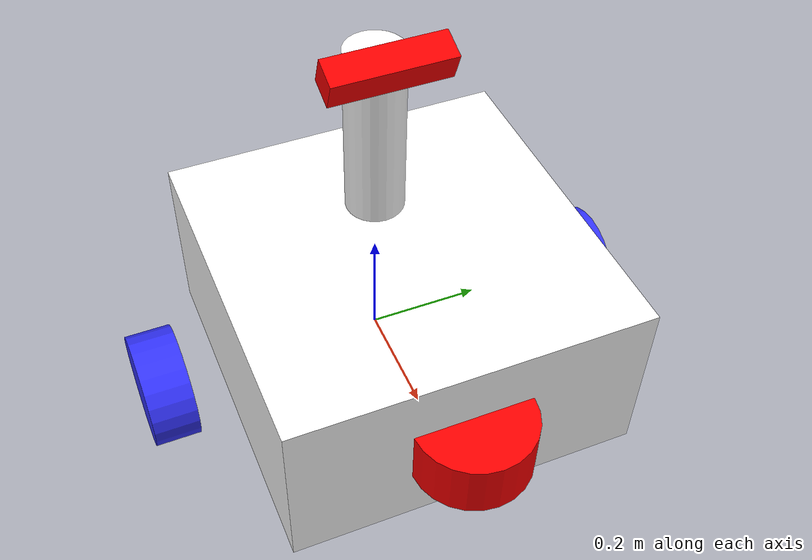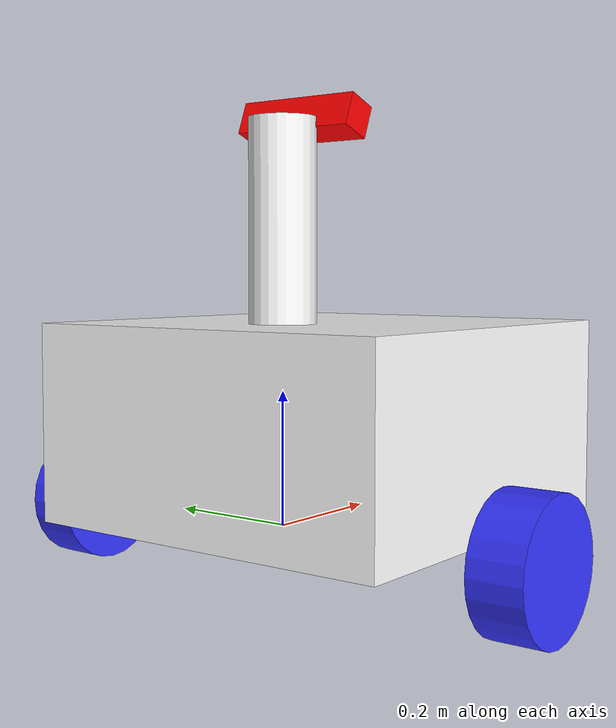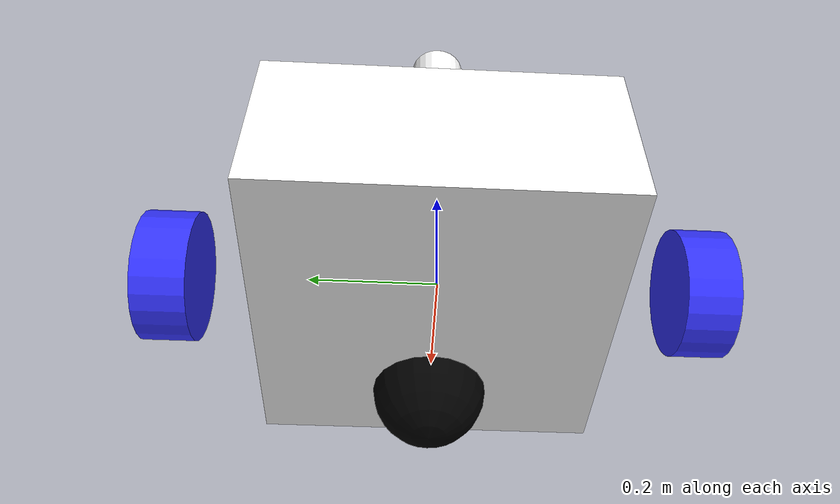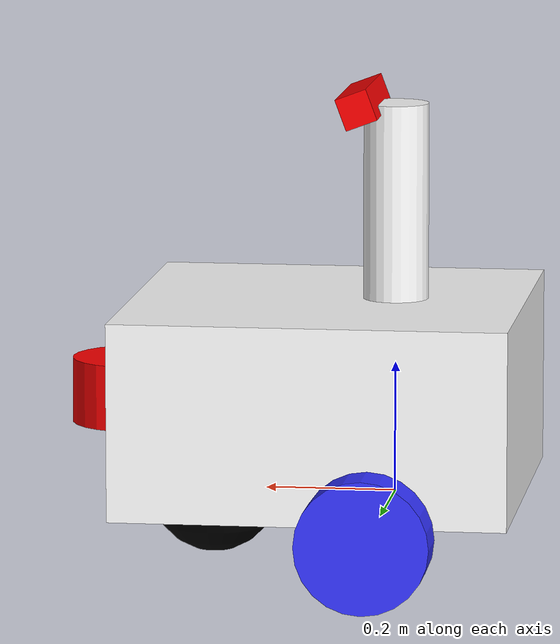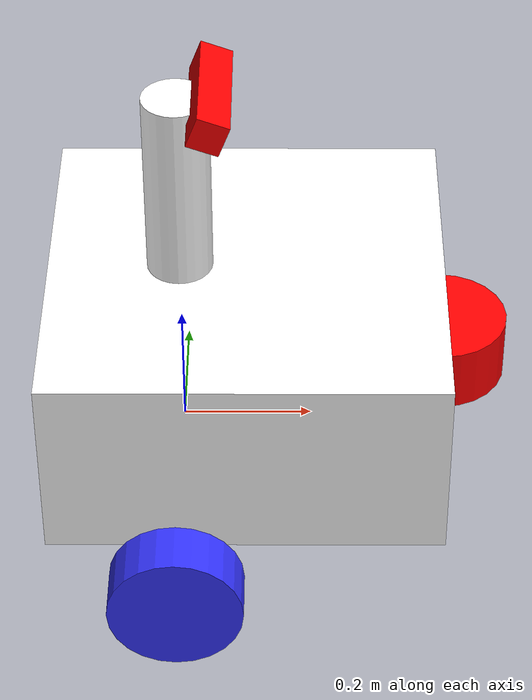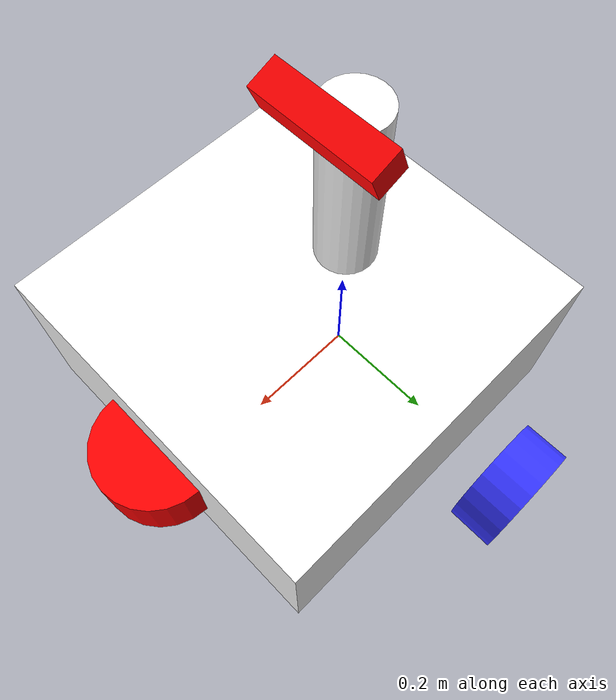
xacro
<?xml version="1.0"?>
<robot xmlns:xacro="http://www.ros.org/wiki/xacro"  name="robot">

    <xacro:arg name="use_ros2_control" default="true" />

    <xacro:include filename="robot_core.xacro" />

    <xacro:if value="$(arg use_ros2_control)">
        <xacro:include filename="ros2_control.xacro" />
    </xacro:if>
    <xacro:unless value="$(arg use_ros2_control)">
        <xacro:include filename="gazebo_control.xacro" />
    </xacro:unless>

    <!-- Sensors -->
    <xacro:include filename="lidar.xacro" />
    <xacro:include filename="imu.xacro" />
    <xacro:include filename="gps.xacro" />
    <xacro:include filename="depth_camera.xacro" />
</robot>

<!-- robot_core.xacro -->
<robot xmlns:xacro="http://www.ros.org/wiki/xacro">

    <xacro:include filename="inertial_macros.xacro"/>

    <material name="white">
        <color rgba="1 1 1 1"/>
    </material>

    <material name="orange">
        <color rgba="1 0.3 0.1 1"/>
    </material>

    <material name="blue">
        <color rgba="0.2 0.2 1 1"/>
    </material>

    <material name="black">
        <color rgba="0 0 0 1"/>
    </material>

    <material name="red">
        <color rgba="1 0 0 1"/>
    </material>

    <!-- BASE LINK -->
    <link name="base_link">

    </link>

    <joint name="base_footprint_joint" type="fixed">
        <parent link="base_link"/>
        <child link="base_footprint"/>
        <origin xyz="0 0 0" rpy="0 0 0"/>
    </joint>

    <link name="base_footprint">
    </link>

    <!-- CHASSIS LINK -->

    <joint name="chassis_joint" type="fixed">
        <parent link="base_link" />
        <child link="chassis" />
        <origin xyz="-0.2 0 0" />
    </joint>

    <link name="chassis">
        <visual>
            <origin xyz="0.3 0 0.15"/>
            <geometry>
                <box size="0.6 0.6 0.3"/>
            </geometry>
            <material name="white"/>
        </visual>
        <collision>
            <origin xyz="0.3 0 0.15"/>
            <geometry>
                <box size="0.6 0.6 0.3"/>
            </geometry>
        </collision>
        <xacro:inertial_box mass="10" x="0.6" y="0.6" z="0.3">
            <origin xyz="0.3 0 0.15" rpy="0 0 0"/>
        </xacro:inertial_box>
    </link>

    <gazebo reference="chassis">
        <material>Gazebo/White</material>
    </gazebo>

    <!-- LEFT WHEEL LINK -->

    <joint name="left_wheel_joint" type="continuous">
        <parent link="base_link"/>
        <child link="left_wheel"/>
        <origin xyz="0 0.405 0" rpy="-${pi/2} 0 0"/>
        <axis xyz="0 0 1"/>
    </joint>

    <link name="left_wheel">
        <visual>
            <geometry>
                <cylinder radius="0.1" length="0.08"/>
            </geometry>
            <material name="blue"/>
        </visual>
        <collision>
            <geometry>
                <sphere radius="0.1" />
            </geometry>
        </collision>
        <xacro:inertial_cylinder mass="0.4" length="0.08" radius="0.1">
            <origin xyz="0 0 0" rpy="0 0 0"/>
        </xacro:inertial_cylinder>
    </link>

    <gazebo reference="left_wheel">
        <material>Gazebo/Blue</material>
    </gazebo>

    <!-- RIGHT WHEEL LINK -->

    <joint name="right_wheel_joint" type="continuous">
        <parent link="base_link"/>
        <child link="right_wheel"/>
        <origin xyz="0 -0.405 0" rpy="${pi/2} 0 0"/>
        <axis xyz="0 0 -1"/>
    </joint>

    <link name="right_wheel">
        <visual>
            <geometry>
                <cylinder radius="0.1" length="0.08"/>
            </geometry>
            <material name="blue"/>
        </visual>
        <collision>
            <geometry>
                <sphere radius="0.1" />
            </geometry>
        </collision>
        <xacro:inertial_cylinder mass="0.4" length="0.08" radius="0.1">
            <origin xyz="0 0 0" rpy="0 0 0"/>
        </xacro:inertial_cylinder>
    </link>

    <gazebo reference="right_wheel">
        <material>Gazebo/Blue</material>
    </gazebo>

    <!-- CASTER WHEEL LINK-->
    <joint name="caster_wheel_joint" type="fixed">
        <parent link="chassis"/>
        <child link="caster_wheel"/>
        <origin xyz="0.48 0 0"/>
    </joint>

    <link name="caster_wheel">
        <visual>
            <geometry>
                <sphere radius="0.1"/>
            </geometry>
            <material name="black"/>
        </visual>
        <collision>
            <geometry>
                <sphere radius="0.1"/>
            </geometry>
        </collision>
        <xacro:inertial_sphere mass="0.2" radius="0.1">
            <origin xyz="0 0 0" rpy="0 0 0"/>
        </xacro:inertial_sphere>
    </link>

    <gazebo reference="caster_wheel">
        <material>Gazebo/Black</material>
        <mu1 value="0.001"/>
        <mu2 value="0.001"/>
    </gazebo>

    <!--CAMERA MOUNT-->
    <joint name="camera_mount_joint" type="fixed">
        <parent link="base_link"/>
        <child link="camera_mount"/>
        <origin xyz="0 0 0.45"/>
    </joint>

    <link name="camera_mount">
        <visual>
            <geometry>
                <cylinder radius="0.05" length="0.3"/>
            </geometry>
            <material name="white"/>
        </visual>
        <collision>
            <geometry>
                <cylinder radius="0.05" length="0.3"/>
            </geometry>
        </collision>
        <xacro:inertial_cylinder mass="0.4" length="0.3" radius="0.05">
            <origin xyz="0 0 0" rpy="0 0 0"/>
        </xacro:inertial_cylinder>
    </link>

</robot>

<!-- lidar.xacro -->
<robot xmlns:xacro="http://www.ros.org/wiki/xacro">

    <joint name="laser_joint" type="fixed">
        <parent link="chassis"/>
        <child link="laser_frame"/>
        <origin xyz="0.6 0 0.15" rpy="0 0 0"/>
    </joint>

    <link name="laser_frame">
        <visual>
            <geometry>
                <cylinder radius="0.1" length="0.1"/>
            </geometry>
            <material name="red"/>
        </visual>
        <collision>
            <geometry>
                <cylinder radius="0.1" length="0.1"/>
            </geometry>
        </collision>
        <xacro:inertial_cylinder mass="0.5" length="0.1" radius="0.1">
            <origin xyz="0 0 0" rpy="0 0 0"/>
        </xacro:inertial_cylinder>
    </link>

    <gazebo reference="laser_frame">
        <material>Gazebo/Red</material>
        <sensor name="laser" type="ray">
            <pose>0 0 0 0 0 0</pose>
            <visualize>true</visualize>
            <update_rate>10</update_rate>
            <ray>
                <scan>
                    <horizontal>
                        <samples>361</samples>
                        <resolution>1</resolution>
                        <min_angle>-${pi/2}</min_angle>
                        <max_angle>${pi/2}</max_angle>
                    </horizontal>
                </scan>
                <range>
                    <min>0.3</min>
                    <max>12</max>
                    <resolution>0.01</resolution>
                </range>
            </ray>
            <plugin name="laser_controller" filename="libgazebo_ros_ray_sensor.so">
                <ros>
                    <argument>~/out:=lidar_scan</argument>
                </ros>
                <output_type>sensor_msgs/LaserScan</output_type>
                <frame_name>laser_frame</frame_name>
            </plugin>
        </sensor>
    </gazebo>

</robot>

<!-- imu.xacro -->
<robot xmlns:xacro="http://www.ros.org/wiki/xacro">

    <joint name="imu_joint" type="fixed">
        <parent link="base_link"/>
        <child link="imu_link"/>
        <origin xyz="0 0 0" rpy="0 0 0"/>
    </joint>

    <link name="imu_link"></link>

    <gazebo reference="imu_link">
        <gravity>true</gravity>
        <sensor name="imu_sensor" type="imu">
        <always_on>true</always_on>
        <update_rate>100</update_rate>
        <visualize>true</visualize>
        <topic>__default_topic__</topic>
        <plugin filename="libgazebo_ros_imu_sensor.so" name="imu_plugin">
            <ros>
                <namespace>/imu</namespace>
                <remapping>~/out:=data</remapping>
            </ros>
            <update_rate>30.0</update_rate>
            <gaussian_noise>0.0</gaussian_noise>
            <body_name>imu_link</body_name>
            <frame_name>imu_link</frame_name>
            <initial_orientation_as_reference>true</initial_orientation_as_reference>
        </plugin>
        <pose>0 0 0 0 0 0</pose>
        </sensor>
    </gazebo>

</robot>

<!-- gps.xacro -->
<robot xmlns:xacro="http://www.ros.org/wiki/xacro">

    <joint name="gps_joint" type="fixed">
        <parent link="chassis"/>
        <child link="gps_link"/>
        <origin xyz="0 0 0" rpy="0 0 0"/>
    </joint>

    <link name="gps_link"></link>

    <gazebo reference="imu_link">
        <sensor name="gps_sensor" type="gps">
        <always_on>true</always_on>
        <update_rate>10.0</update_rate>
        <gps>
            <position_sensing>
            <horizontal>
                <noise type="gaussian">
                <mean>0.0</mean>
                <stddev>1e-2</stddev>
                </noise>
            </horizontal>
            <vertical>
                <noise type="gaussian">
                <mean>0.0</mean>
                <stddev>1e-2</stddev>
                </noise>
            </vertical>
            </position_sensing>
        </gps>
        <plugin filename="libgazebo_ros_gps_sensor.so" name="gps_plugin">
            <ros>
                <namespace>/gps</namespace>
                <remapping>~/out:=fix</remapping>
            </ros>
        </plugin>
        </sensor>
    </gazebo>

</robot>

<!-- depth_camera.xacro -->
<robot xmlns:xacro="http://www.ros.org/wiki/xacro">

    <joint name="camera_joint" type="fixed">
        <parent link="chassis"/>
        <child link="camera_link"/>
        <origin xyz="0.25 0 0.6" rpy="0 0.36 0"/>
    </joint>

    <link name="camera_link">
        <visual>
            <geometry>
                <box size="0.05 0.2 0.05"/>
            </geometry>
            <material name="red"/>
        </visual>
    </link>

    <joint name="camera_optical_joint" type="fixed">
        <parent link="camera_link"/>
        <child link="camera_link_optical"/>
        <origin xyz="0 0 0" rpy="${-pi/2} 0 ${-pi/2}"/>
    </joint>

    <link name="camera_link_optical"></link>

    <gazebo reference="camera_link">
        <material>Gazebo/Red</material>
        <sensor name="camera" type="depth">
            <pose>0 0 0 0 0 0</pose>
            <visualize>true</visualize>
            <update_rate>15.0</update_rate>
            <camera>
                <horizontal_fov>1.089</horizontal_fov>
                <image>
                    <format>B8G8R8</format>
                    <width>320</width>
                    <height>240</height>
                </image>
                <clip>
                    <near>0.05</near>
                    <far>8.0</far>
                </clip>
            </camera>
            <plugin name="camera_controller" filename="libgazebo_ros_camera.so">
                <frame_name>camera_link_optical</frame_name>
                <min_depth>0.1</min_depth>
                <max_depth>100</max_depth>
                <update_rate>0.0</update_rate>
                <always_on>true</always_on>
            </plugin>
        </sensor>
    </gazebo>

</robot>
